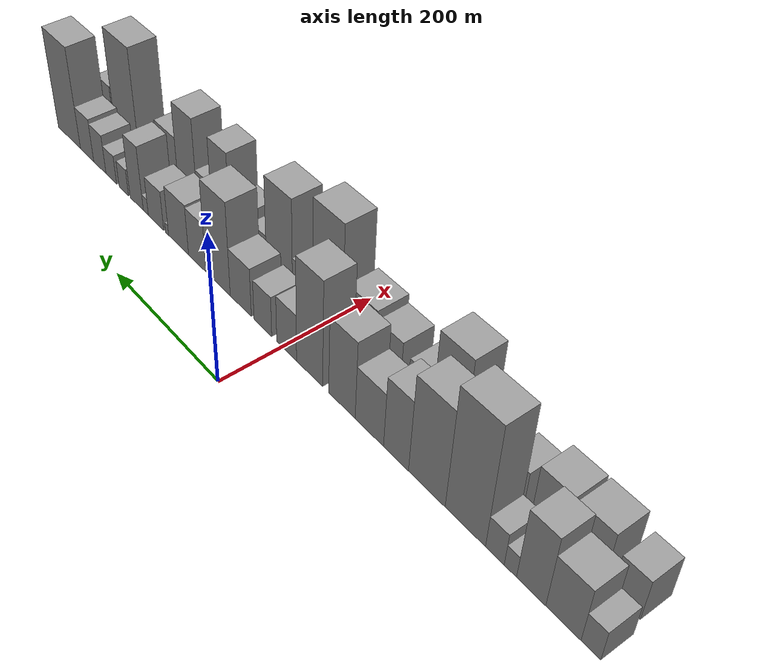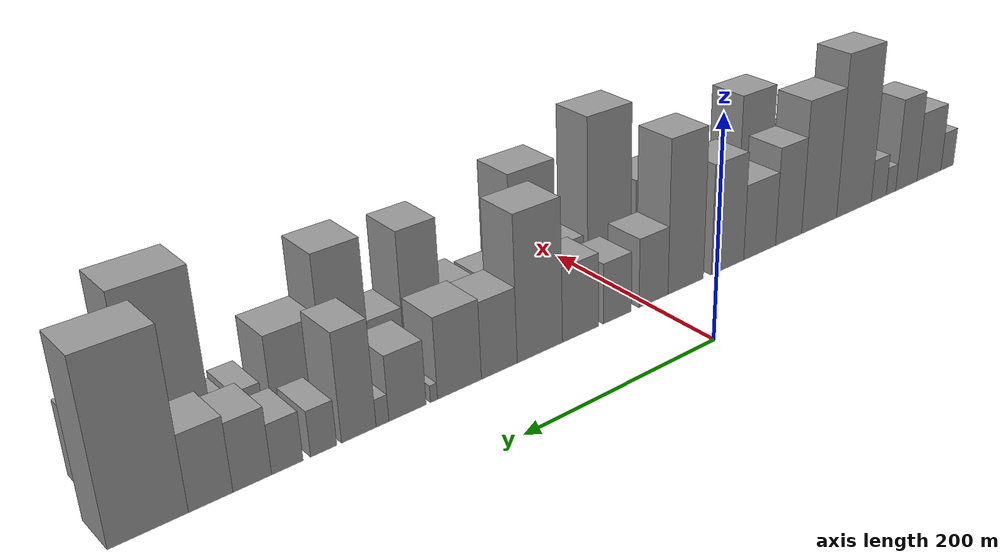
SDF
<sdf version="1.6">
 <world name="default">
  <scene>
   <sky><clouds><speed>12</speed></clouds></sky>
   <ambient>0.4 0.4 0.4 1</ambient>
   <background>0.7 0.7 0.7 1</background>
   <shadows>1</shadows>
  </scene>
  <gravity>0 0 -9.8066</gravity>
  <magnetic_field>6e-06 2.3e-05 -4.2e-05</magnetic_field>
  <physics default="0" name="default_physics" type="ode">
   <ode>
    <solver>
     <type>quick</type>
     <iters>10</iters>
     <sor>1.0</sor>
     <use_dynamic_moi_rescaling>0</use_dynamic_moi_rescaling>
    </solver>
    <constraints>
     <cfm>0</cfm>
     <erp>0.2</erp>
     <contact_max_correcting_vel>100</contact_max_correcting_vel>
     <contact_surface_layer>0.001</contact_surface_layer>
    </constraints>
   </ode>
   <max_step_size>0.004</max_step_size>
   <real_time_factor>1</real_time_factor>
   <real_time_update_rate>250</real_time_update_rate>
  </physics>
  <light name="sun" type="directional">
   <pose>0 0 10 0 0 0</pose>
   <diffuse>0.8 0.8 0.8 1</diffuse>
   <specular>0.2 0.2 0.2 1</specular>
   <attenuation>
    <range>1000</range>
    <constant>0.9</constant>
    <linear>0.01</linear>
    <quadratic>0.001</quadratic>
   </attenuation>
   <direction>-0.5 0.1 -0.9</direction>
  </light>
  <model name="building_1">
   <static>1</static>
   <pose>100.0000 -438.6975 0 0.000000 0.000000 0.000000</pose>
   <link name="link">
    <pose>0 0 21.00 0 0 0</pose>
    <collision name="collision"><geometry><box><size>40.0000 22.6050 42.0000</size></box></geometry></collision>
    <visual name="visual">
     <cast_shadows>0</cast_shadows>
     <geometry><box><size>40.0000 22.6050 42.0000</size></box></geometry>
     <material>
      <script>
       <uri>model://grey_wall/materials/scripts</uri>
       <uri>model://grey_wall/materials/textures</uri>
       <name>vrc/grey_wall</name>
      </script>
     </material>
    </visual>
   </link>
  </model>
  <model name="building_2">
   <static>1</static>
   <pose>100.0000 -406.5002 0 0.000000 0.000000 0.000000</pose>
   <link name="link">
    <pose>0 0 37.50 0 0 0</pose>
    <collision name="collision"><geometry><box><size>40.0000 41.7895 75.0000</size></box></geometry></collision>
    <visual name="visual">
     <cast_shadows>0</cast_shadows>
     <geometry><box><size>40.0000 41.7895 75.0000</size></box></geometry>
     <material>
      <script>
       <uri>model://grey_wall/materials/scripts</uri>
       <uri>model://grey_wall/materials/textures</uri>
       <name>vrc/grey_wall</name>
      </script>
     </material>
    </visual>
   </link>
  </model>
  <model name="building_3">
   <static>1</static>
   <pose>100.0000 -367.5812 0 0.000000 0.000000 0.000000</pose>
   <link name="link">
    <pose>0 0 49.50 0 0 0</pose>
    <collision name="collision"><geometry><box><size>40.0000 36.0486 99.0000</size></box></geometry></collision>
    <visual name="visual">
     <cast_shadows>0</cast_shadows>
     <geometry><box><size>40.0000 36.0486 99.0000</size></box></geometry>
     <material>
      <script>
       <uri>model://grey_wall/materials/scripts</uri>
       <uri>model://grey_wall/materials/textures</uri>
       <name>vrc/grey_wall</name>
      </script>
     </material>
    </visual>
   </link>
  </model>
  <model name="building_4">
   <static>1</static>
   <pose>100.0000 -341.7161 0 0.000000 0.000000 0.000000</pose>
   <link name="link">
    <pose>0 0 15.00 0 0 0</pose>
    <collision name="collision"><geometry><box><size>40.0000 15.6816 30.0000</size></box></geometry></collision>
    <visual name="visual">
     <cast_shadows>0</cast_shadows>
     <geometry><box><size>40.0000 15.6816 30.0000</size></box></geometry>
     <material>
      <script>
       <uri>model://grey_wall/materials/scripts</uri>
       <uri>model://grey_wall/materials/textures</uri>
       <name>vrc/grey_wall</name>
      </script>
     </material>
    </visual>
   </link>
  </model>
  <model name="building_5">
   <static>1</static>
   <pose>100.0000 -321.7724 0 0.000000 0.000000 0.000000</pose>
   <link name="link">
    <pose>0 0 22.50 0 0 0</pose>
    <collision name="collision"><geometry><box><size>40.0000 24.2058 45.0000</size></box></geometry></collision>
    <visual name="visual">
     <cast_shadows>0</cast_shadows>
     <geometry><box><size>40.0000 24.2058 45.0000</size></box></geometry>
     <material>
      <script>
       <uri>model://grey_wall/materials/scripts</uri>
       <uri>model://grey_wall/materials/textures</uri>
       <name>vrc/grey_wall</name>
      </script>
     </material>
    </visual>
   </link>
  </model>
  <model name="building_6">
   <static>1</static>
   <pose>100.0000 -282.4637 0 0.000000 0.000000 0.000000</pose>
   <link name="link">
    <pose>0 0 84.00 0 0 0</pose>
    <collision name="collision"><geometry><box><size>40.0000 54.4115 168.0000</size></box></geometry></collision>
    <visual name="visual">
     <cast_shadows>0</cast_shadows>
     <geometry><box><size>40.0000 54.4115 168.0000</size></box></geometry>
     <material>
      <script>
       <uri>model://grey_wall/materials/scripts</uri>
       <uri>model://grey_wall/materials/textures</uri>
       <name>vrc/grey_wall</name>
      </script>
     </material>
    </visual>
   </link>
  </model>
  <model name="building_7">
   <static>1</static>
   <pose>100.0000 -229.1342 0 0.000000 0.000000 0.000000</pose>
   <link name="link">
    <pose>0 0 67.50 0 0 0</pose>
    <collision name="collision"><geometry><box><size>40.0000 52.2474 135.0000</size></box></geometry></collision>
    <visual name="visual">
     <cast_shadows>0</cast_shadows>
     <geometry><box><size>40.0000 52.2474 135.0000</size></box></geometry>
     <material>
      <script>
       <uri>model://grey_wall/materials/scripts</uri>
       <uri>model://grey_wall/materials/textures</uri>
       <name>vrc/grey_wall</name>
      </script>
     </material>
    </visual>
   </link>
  </model>
  <model name="building_8">
   <static>1</static>
   <pose>100.0000 -184.4426 0 0.000000 0.000000 0.000000</pose>
   <link name="link">
    <pose>0 0 49.50 0 0 0</pose>
    <collision name="collision"><geometry><box><size>40.0000 37.1358 99.0000</size></box></geometry></collision>
    <visual name="visual">
     <cast_shadows>0</cast_shadows>
     <geometry><box><size>40.0000 37.1358 99.0000</size></box></geometry>
     <material>
      <script>
       <uri>model://grey_wall/materials/scripts</uri>
       <uri>model://grey_wall/materials/textures</uri>
       <name>vrc/grey_wall</name>
      </script>
     </material>
    </visual>
   </link>
  </model>
  <model name="building_9">
   <static>1</static>
   <pose>100.0000 -143.9571 0 0.000000 0.000000 0.000000</pose>
   <link name="link">
    <pose>0 0 37.50 0 0 0</pose>
    <collision name="collision"><geometry><box><size>40.0000 43.8353 75.0000</size></box></geometry></collision>
    <visual name="visual">
     <cast_shadows>0</cast_shadows>
     <geometry><box><size>40.0000 43.8353 75.0000</size></box></geometry>
     <material>
      <script>
       <uri>model://grey_wall/materials/scripts</uri>
       <uri>model://grey_wall/materials/textures</uri>
       <name>vrc/grey_wall</name>
      </script>
     </material>
    </visual>
   </link>
  </model>
  <model name="building_10">
   <static>1</static>
   <pose>100.0000 -100.6402 0 0.000000 0.000000 0.000000</pose>
   <link name="link">
    <pose>0 0 54.00 0 0 0</pose>
    <collision name="collision"><geometry><box><size>40.0000 42.7984 108.0000</size></box></geometry></collision>
    <visual name="visual">
     <cast_shadows>0</cast_shadows>
     <geometry><box><size>40.0000 42.7984 108.0000</size></box></geometry>
     <material>
      <script>
       <uri>model://grey_wall/materials/scripts</uri>
       <uri>model://grey_wall/materials/textures</uri>
       <name>vrc/grey_wall</name>
      </script>
     </material>
    </visual>
   </link>
  </model>
  <model name="building_11">
   <static>1</static>
   <pose>100.0000 -47.1690 0 0.000000 0.000000 0.000000</pose>
   <link name="link">
    <pose>0 0 73.50 0 0 0</pose>
    <collision name="collision"><geometry><box><size>40.0000 44.1441 147.0000</size></box></geometry></collision>
    <visual name="visual">
     <cast_shadows>0</cast_shadows>
     <geometry><box><size>40.0000 44.1441 147.0000</size></box></geometry>
     <material>
      <script>
       <uri>model://grey_wall/materials/scripts</uri>
       <uri>model://grey_wall/materials/textures</uri>
       <name>vrc/grey_wall</name>
      </script>
     </material>
    </visual>
   </link>
  </model>
  <model name="building_12">
   <static>1</static>
   <pose>100.0000 -7.7642 0 0.000000 0.000000 0.000000</pose>
   <link name="link">
    <pose>0 0 33.00 0 0 0</pose>
    <collision name="collision"><geometry><box><size>40.0000 34.6655 66.0000</size></box></geometry></collision>
    <visual name="visual">
     <cast_shadows>0</cast_shadows>
     <geometry><box><size>40.0000 34.6655 66.0000</size></box></geometry>
     <material>
      <script>
       <uri>model://grey_wall/materials/scripts</uri>
       <uri>model://grey_wall/materials/textures</uri>
       <name>vrc/grey_wall</name>
      </script>
     </material>
    </visual>
   </link>
  </model>
  <model name="building_13">
   <static>1</static>
   <pose>100.0000 34.6609 0 0.000000 0.000000 0.000000</pose>
   <link name="link">
    <pose>0 0 28.50 0 0 0</pose>
    <collision name="collision"><geometry><box><size>40.0000 32.1845 57.0000</size></box></geometry></collision>
    <visual name="visual">
     <cast_shadows>0</cast_shadows>
     <geometry><box><size>40.0000 32.1845 57.0000</size></box></geometry>
     <material>
      <script>
       <uri>model://grey_wall/materials/scripts</uri>
       <uri>model://grey_wall/materials/textures</uri>
       <name>vrc/grey_wall</name>
      </script>
     </material>
    </visual>
   </link>
  </model>
  <model name="building_14">
   <static>1</static>
   <pose>100.0000 75.6124 0 0.000000 0.000000 0.000000</pose>
   <link name="link">
    <pose>0 0 34.50 0 0 0</pose>
    <collision name="collision"><geometry><box><size>40.0000 39.7187 69.0000</size></box></geometry></collision>
    <visual name="visual">
     <cast_shadows>0</cast_shadows>
     <geometry><box><size>40.0000 39.7187 69.0000</size></box></geometry>
     <material>
      <script>
       <uri>model://grey_wall/materials/scripts</uri>
       <uri>model://grey_wall/materials/textures</uri>
       <name>vrc/grey_wall</name>
      </script>
     </material>
    </visual>
   </link>
  </model>
  <model name="building_15">
   <static>1</static>
   <pose>100.0000 119.1452 0 0.000000 0.000000 0.000000</pose>
   <link name="link">
    <pose>0 0 66.00 0 0 0</pose>
    <collision name="collision"><geometry><box><size>40.0000 47.3469 132.0000</size></box></geometry></collision>
    <visual name="visual">
     <cast_shadows>0</cast_shadows>
     <geometry><box><size>40.0000 47.3469 132.0000</size></box></geometry>
     <material>
      <script>
       <uri>model://grey_wall/materials/scripts</uri>
       <uri>model://grey_wall/materials/textures</uri>
       <name>vrc/grey_wall</name>
      </script>
     </material>
    </visual>
   </link>
  </model>
  <model name="building_16">
   <static>1</static>
   <pose>100.0000 160.6258 0 0.000000 0.000000 0.000000</pose>
   <link name="link">
    <pose>0 0 34.50 0 0 0</pose>
    <collision name="collision"><geometry><box><size>40.0000 35.6143 69.0000</size></box></geometry></collision>
    <visual name="visual">
     <cast_shadows>0</cast_shadows>
     <geometry><box><size>40.0000 35.6143 69.0000</size></box></geometry>
     <material>
      <script>
       <uri>model://grey_wall/materials/scripts</uri>
       <uri>model://grey_wall/materials/textures</uri>
       <name>vrc/grey_wall</name>
      </script>
     </material>
    </visual>
   </link>
  </model>
  <model name="building_17">
   <static>1</static>
   <pose>100.0000 199.3810 0 0.000000 0.000000 0.000000</pose>
   <link name="link">
    <pose>0 0 36.00 0 0 0</pose>
    <collision name="collision"><geometry><box><size>40.0000 41.8960 72.0000</size></box></geometry></collision>
    <visual name="visual">
     <cast_shadows>0</cast_shadows>
     <geometry><box><size>40.0000 41.8960 72.0000</size></box></geometry>
     <material>
      <script>
       <uri>model://grey_wall/materials/scripts</uri>
       <uri>model://grey_wall/materials/textures</uri>
       <name>vrc/grey_wall</name>
      </script>
     </material>
    </visual>
   </link>
  </model>
  <model name="building_18">
   <static>1</static>
   <pose>100.0000 223.5403 0 0.000000 0.000000 0.000000</pose>
   <link name="link">
    <pose>0 0 7.50 0 0 0</pose>
    <collision name="collision"><geometry><box><size>40.0000 6.4225 15.0000</size></box></geometry></collision>
    <visual name="visual">
     <cast_shadows>0</cast_shadows>
     <geometry><box><size>40.0000 6.4225 15.0000</size></box></geometry>
     <material>
      <script>
       <uri>model://grey_wall/materials/scripts</uri>
       <uri>model://grey_wall/materials/textures</uri>
       <name>vrc/grey_wall</name>
      </script>
     </material>
    </visual>
   </link>
  </model>
  <model name="building_19">
   <static>1</static>
   <pose>100.0000 247.5227 0 0.000000 0.000000 0.000000</pose>
   <link name="link">
    <pose>0 0 28.50 0 0 0</pose>
    <collision name="collision"><geometry><box><size>40.0000 33.5424 57.0000</size></box></geometry></collision>
    <visual name="visual">
     <cast_shadows>0</cast_shadows>
     <geometry><box><size>40.0000 33.5424 57.0000</size></box></geometry>
     <material>
      <script>
       <uri>model://grey_wall/materials/scripts</uri>
       <uri>model://grey_wall/materials/textures</uri>
       <name>vrc/grey_wall</name>
      </script>
     </material>
    </visual>
   </link>
  </model>
  <model name="building_20">
   <static>1</static>
   <pose>100.0000 269.8458 0 0.000000 0.000000 0.000000</pose>
   <link name="link">
    <pose>0 0 12.00 0 0 0</pose>
    <collision name="collision"><geometry><box><size>40.0000 11.1038 24.0000</size></box></geometry></collision>
    <visual name="visual">
     <cast_shadows>0</cast_shadows>
     <geometry><box><size>40.0000 11.1038 24.0000</size></box></geometry>
     <material>
      <script>
       <uri>model://grey_wall/materials/scripts</uri>
       <uri>model://grey_wall/materials/textures</uri>
       <name>vrc/grey_wall</name>
      </script>
     </material>
    </visual>
   </link>
  </model>
  <model name="building_21">
   <static>1</static>
   <pose>100.0000 290.1641 0 0.000000 0.000000 0.000000</pose>
   <link name="link">
    <pose>0 0 46.50 0 0 0</pose>
    <collision name="collision"><geometry><box><size>40.0000 29.5327 93.0000</size></box></geometry></collision>
    <visual name="visual">
     <cast_shadows>0</cast_shadows>
     <geometry><box><size>40.0000 29.5327 93.0000</size></box></geometry>
     <material>
      <script>
       <uri>model://grey_wall/materials/scripts</uri>
       <uri>model://grey_wall/materials/textures</uri>
       <name>vrc/grey_wall</name>
      </script>
     </material>
    </visual>
   </link>
  </model>
  <model name="building_22">
   <static>1</static>
   <pose>100.0000 319.6768 0 0.000000 0.000000 0.000000</pose>
   <link name="link">
    <pose>0 0 19.50 0 0 0</pose>
    <collision name="collision"><geometry><box><size>40.0000 21.4927 39.0000</size></box></geometry></collision>
    <visual name="visual">
     <cast_shadows>0</cast_shadows>
     <geometry><box><size>40.0000 21.4927 39.0000</size></box></geometry>
     <material>
      <script>
       <uri>model://grey_wall/materials/scripts</uri>
       <uri>model://grey_wall/materials/textures</uri>
       <name>vrc/grey_wall</name>
      </script>
     </material>
    </visual>
   </link>
  </model>
  <model name="building_23">
   <static>1</static>
   <pose>100.0000 348.9001 0 0.000000 0.000000 0.000000</pose>
   <link name="link">
    <pose>0 0 21.00 0 0 0</pose>
    <collision name="collision"><geometry><box><size>40.0000 24.9539 42.0000</size></box></geometry></collision>
    <visual name="visual">
     <cast_shadows>0</cast_shadows>
     <geometry><box><size>40.0000 24.9539 42.0000</size></box></geometry>
     <material>
      <script>
       <uri>model://grey_wall/materials/scripts</uri>
       <uri>model://grey_wall/materials/textures</uri>
       <name>vrc/grey_wall</name>
      </script>
     </material>
    </visual>
   </link>
  </model>
  <model name="building_24">
   <static>1</static>
   <pose>100.0000 376.1782 0 0.000000 0.000000 0.000000</pose>
   <link name="link">
    <pose>0 0 28.50 0 0 0</pose>
    <collision name="collision"><geometry><box><size>40.0000 29.6024 57.0000</size></box></geometry></collision>
    <visual name="visual">
     <cast_shadows>0</cast_shadows>
     <geometry><box><size>40.0000 29.6024 57.0000</size></box></geometry>
     <material>
      <script>
       <uri>model://grey_wall/materials/scripts</uri>
       <uri>model://grey_wall/materials/textures</uri>
       <name>vrc/grey_wall</name>
      </script>
     </material>
    </visual>
   </link>
  </model>
  <model name="building_25">
   <static>1</static>
   <pose>100.0000 407.3215 0 0.000000 0.000000 0.000000</pose>
   <link name="link">
    <pose>0 0 31.50 0 0 0</pose>
    <collision name="collision"><geometry><box><size>40.0000 32.6842 63.0000</size></box></geometry></collision>
    <visual name="visual">
     <cast_shadows>0</cast_shadows>
     <geometry><box><size>40.0000 32.6842 63.0000</size></box></geometry>
     <material>
      <script>
       <uri>model://grey_wall/materials/scripts</uri>
       <uri>model://grey_wall/materials/textures</uri>
       <name>vrc/grey_wall</name>
      </script>
     </material>
    </visual>
   </link>
  </model>
  <model name="building_26">
   <static>1</static>
   <pose>100.0000 451.8058 0 0.000000 0.000000 0.000000</pose>
   <link name="link">
    <pose>0 0 73.50 0 0 0</pose>
    <collision name="collision"><geometry><box><size>40.0000 56.2844 147.0000</size></box></geometry></collision>
    <visual name="visual">
     <cast_shadows>0</cast_shadows>
     <geometry><box><size>40.0000 56.2844 147.0000</size></box></geometry>
     <material>
      <script>
       <uri>model://grey_wall/materials/scripts</uri>
       <uri>model://grey_wall/materials/textures</uri>
       <name>vrc/grey_wall</name>
      </script>
     </material>
    </visual>
   </link>
  </model>
  <model name="building_27">
   <static>1</static>
   <pose>155.0000 -427.6339 0 0.000000 0.000000 0.000000</pose>
   <link name="link">
    <pose>0 0 28.50 0 0 0</pose>
    <collision name="collision"><geometry><box><size>40.0000 32.7322 57.0000</size></box></geometry></collision>
    <visual name="visual">
     <cast_shadows>0</cast_shadows>
     <geometry><box><size>40.0000 32.7322 57.0000</size></box></geometry>
     <material>
      <script>
       <uri>model://grey_wall/materials/scripts</uri>
       <uri>model://grey_wall/materials/textures</uri>
       <name>vrc/grey_wall</name>
      </script>
     </material>
    </visual>
   </link>
  </model>
  <model name="building_28">
   <static>1</static>
   <pose>155.0000 -379.0314 0 0.000000 0.000000 0.000000</pose>
   <link name="link">
    <pose>0 0 37.50 0 0 0</pose>
    <collision name="collision"><geometry><box><size>40.0000 44.4727 75.0000</size></box></geometry></collision>
    <visual name="visual">
     <cast_shadows>0</cast_shadows>
     <geometry><box><size>40.0000 44.4727 75.0000</size></box></geometry>
     <material>
      <script>
       <uri>model://grey_wall/materials/scripts</uri>
       <uri>model://grey_wall/materials/textures</uri>
       <name>vrc/grey_wall</name>
      </script>
     </material>
    </visual>
   </link>
  </model>
  <model name="building_29">
   <static>1</static>
   <pose>155.0000 -332.5333 0 0.000000 0.000000 0.000000</pose>
   <link name="link">
    <pose>0 0 37.50 0 0 0</pose>
    <collision name="collision"><geometry><box><size>40.0000 42.5235 75.0000</size></box></geometry></collision>
    <visual name="visual">
     <cast_shadows>0</cast_shadows>
     <geometry><box><size>40.0000 42.5235 75.0000</size></box></geometry>
     <material>
      <script>
       <uri>model://grey_wall/materials/scripts</uri>
       <uri>model://grey_wall/materials/textures</uri>
       <name>vrc/grey_wall</name>
      </script>
     </material>
    </visual>
   </link>
  </model>
  <model name="building_30">
   <static>1</static>
   <pose>155.0000 -286.5264 0 0.000000 0.000000 0.000000</pose>
   <link name="link">
    <pose>0 0 27.00 0 0 0</pose>
    <collision name="collision"><geometry><box><size>40.0000 29.4903 54.0000</size></box></geometry></collision>
    <visual name="visual">
     <cast_shadows>0</cast_shadows>
     <geometry><box><size>40.0000 29.4903 54.0000</size></box></geometry>
     <material>
      <script>
       <uri>model://grey_wall/materials/scripts</uri>
       <uri>model://grey_wall/materials/textures</uri>
       <name>vrc/grey_wall</name>
      </script>
     </material>
    </visual>
   </link>
  </model>
  <model name="building_31">
   <static>1</static>
   <pose>155.0000 -240.9406 0 0.000000 0.000000 0.000000</pose>
   <link name="link">
    <pose>0 0 37.50 0 0 0</pose>
    <collision name="collision"><geometry><box><size>40.0000 43.6813 75.0000</size></box></geometry></collision>
    <visual name="visual">
     <cast_shadows>0</cast_shadows>
     <geometry><box><size>40.0000 43.6813 75.0000</size></box></geometry>
     <material>
      <script>
       <uri>model://grey_wall/materials/scripts</uri>
       <uri>model://grey_wall/materials/textures</uri>
       <name>vrc/grey_wall</name>
      </script>
     </material>
    </visual>
   </link>
  </model>
  <model name="building_32">
   <static>1</static>
   <pose>155.0000 -195.7941 0 0.000000 0.000000 0.000000</pose>
   <link name="link">
    <pose>0 0 66.00 0 0 0</pose>
    <collision name="collision"><geometry><box><size>40.0000 46.6116 132.0000</size></box></geometry></collision>
    <visual name="visual">
     <cast_shadows>0</cast_shadows>
     <geometry><box><size>40.0000 46.6116 132.0000</size></box></geometry>
     <material>
      <script>
       <uri>model://grey_wall/materials/scripts</uri>
       <uri>model://grey_wall/materials/textures</uri>
       <name>vrc/grey_wall</name>
      </script>
     </material>
    </visual>
   </link>
  </model>
  <model name="building_33">
   <static>1</static>
   <pose>155.0000 -154.2296 0 0.000000 0.000000 0.000000</pose>
   <link name="link">
    <pose>0 0 31.50 0 0 0</pose>
    <collision name="collision"><geometry><box><size>40.0000 36.5173 63.0000</size></box></geometry></collision>
    <visual name="visual">
     <cast_shadows>0</cast_shadows>
     <geometry><box><size>40.0000 36.5173 63.0000</size></box></geometry>
     <material>
      <script>
       <uri>model://grey_wall/materials/scripts</uri>
       <uri>model://grey_wall/materials/textures</uri>
       <name>vrc/grey_wall</name>
      </script>
     </material>
    </visual>
   </link>
  </model>
  <model name="building_34">
   <static>1</static>
   <pose>155.0000 -130.4235 0 0.000000 0.000000 0.000000</pose>
   <link name="link">
    <pose>0 0 12.00 0 0 0</pose>
    <collision name="collision"><geometry><box><size>40.0000 11.0950 24.0000</size></box></geometry></collision>
    <visual name="visual">
     <cast_shadows>0</cast_shadows>
     <geometry><box><size>40.0000 11.0950 24.0000</size></box></geometry>
     <material>
      <script>
       <uri>model://grey_wall/materials/scripts</uri>
       <uri>model://grey_wall/materials/textures</uri>
       <name>vrc/grey_wall</name>
      </script>
     </material>
    </visual>
   </link>
  </model>
  <model name="building_35">
   <static>1</static>
   <pose>155.0000 -105.1283 0 0.000000 0.000000 0.000000</pose>
   <link name="link">
    <pose>0 0 37.50 0 0 0</pose>
    <collision name="collision"><geometry><box><size>40.0000 39.4955 75.0000</size></box></geometry></collision>
    <visual name="visual">
     <cast_shadows>0</cast_shadows>
     <geometry><box><size>40.0000 39.4955 75.0000</size></box></geometry>
     <material>
      <script>
       <uri>model://grey_wall/materials/scripts</uri>
       <uri>model://grey_wall/materials/textures</uri>
       <name>vrc/grey_wall</name>
      </script>
     </material>
    </visual>
   </link>
  </model>
  <model name="building_36">
   <static>1</static>
   <pose>155.0000 -61.3893 0 0.000000 0.000000 0.000000</pose>
   <link name="link">
    <pose>0 0 43.50 0 0 0</pose>
    <collision name="collision"><geometry><box><size>40.0000 47.9824 87.0000</size></box></geometry></collision>
    <visual name="visual">
     <cast_shadows>0</cast_shadows>
     <geometry><box><size>40.0000 47.9824 87.0000</size></box></geometry>
     <material>
      <script>
       <uri>model://grey_wall/materials/scripts</uri>
       <uri>model://grey_wall/materials/textures</uri>
       <name>vrc/grey_wall</name>
      </script>
     </material>
    </visual>
   </link>
  </model>
  <model name="building_37">
   <static>1</static>
   <pose>155.0000 -5.8258 0 0.000000 0.000000 0.000000</pose>
   <link name="link">
    <pose>0 0 81.00 0 0 0</pose>
    <collision name="collision"><geometry><box><size>40.0000 51.1446 162.0000</size></box></geometry></collision>
    <visual name="visual">
     <cast_shadows>0</cast_shadows>
     <geometry><box><size>40.0000 51.1446 162.0000</size></box></geometry>
     <material>
      <script>
       <uri>model://grey_wall/materials/scripts</uri>
       <uri>model://grey_wall/materials/textures</uri>
       <name>vrc/grey_wall</name>
      </script>
     </material>
    </visual>
   </link>
  </model>
  <model name="building_38">
   <static>1</static>
   <pose>155.0000 40.3912 0 0.000000 0.000000 0.000000</pose>
   <link name="link">
    <pose>0 0 27.00 0 0 0</pose>
    <collision name="collision"><geometry><box><size>40.0000 31.2895 54.0000</size></box></geometry></collision>
    <visual name="visual">
     <cast_shadows>0</cast_shadows>
     <geometry><box><size>40.0000 31.2895 54.0000</size></box></geometry>
     <material>
      <script>
       <uri>model://grey_wall/materials/scripts</uri>
       <uri>model://grey_wall/materials/textures</uri>
       <name>vrc/grey_wall</name>
      </script>
     </material>
    </visual>
   </link>
  </model>
  <model name="building_39">
   <static>1</static>
   <pose>155.0000 80.2351 0 0.000000 0.000000 0.000000</pose>
   <link name="link">
    <pose>0 0 67.50 0 0 0</pose>
    <collision name="collision"><geometry><box><size>40.0000 48.3982 135.0000</size></box></geometry></collision>
    <visual name="visual">
     <cast_shadows>0</cast_shadows>
     <geometry><box><size>40.0000 48.3982 135.0000</size></box></geometry>
     <material>
      <script>
       <uri>model://grey_wall/materials/scripts</uri>
       <uri>model://grey_wall/materials/textures</uri>
       <name>vrc/grey_wall</name>
      </script>
     </material>
    </visual>
   </link>
  </model>
  <model name="building_40">
   <static>1</static>
   <pose>155.0000 118.5507 0 0.000000 0.000000 0.000000</pose>
   <link name="link">
    <pose>0 0 25.50 0 0 0</pose>
    <collision name="collision"><geometry><box><size>40.0000 28.2330 51.0000</size></box></geometry></collision>
    <visual name="visual">
     <cast_shadows>0</cast_shadows>
     <geometry><box><size>40.0000 28.2330 51.0000</size></box></geometry>
     <material>
      <script>
       <uri>model://grey_wall/materials/scripts</uri>
       <uri>model://grey_wall/materials/textures</uri>
       <name>vrc/grey_wall</name>
      </script>
     </material>
    </visual>
   </link>
  </model>
  <model name="building_41">
   <static>1</static>
   <pose>155.0000 158.5747 0 0.000000 0.000000 0.000000</pose>
   <link name="link">
    <pose>0 0 28.50 0 0 0</pose>
    <collision name="collision"><geometry><box><size>40.0000 33.8149 57.0000</size></box></geometry></collision>
    <visual name="visual">
     <cast_shadows>0</cast_shadows>
     <geometry><box><size>40.0000 33.8149 57.0000</size></box></geometry>
     <material>
      <script>
       <uri>model://grey_wall/materials/scripts</uri>
       <uri>model://grey_wall/materials/textures</uri>
       <name>vrc/grey_wall</name>
      </script>
     </material>
    </visual>
   </link>
  </model>
  <model name="building_42">
   <static>1</static>
   <pose>155.0000 193.8542 0 0.000000 0.000000 0.000000</pose>
   <link name="link">
    <pose>0 0 60.00 0 0 0</pose>
    <collision name="collision"><geometry><box><size>40.0000 36.7441 120.0000</size></box></geometry></collision>
    <visual name="visual">
     <cast_shadows>0</cast_shadows>
     <geometry><box><size>40.0000 36.7441 120.0000</size></box></geometry>
     <material>
      <script>
       <uri>model://grey_wall/materials/scripts</uri>
       <uri>model://grey_wall/materials/textures</uri>
       <name>vrc/grey_wall</name>
      </script>
     </material>
    </visual>
   </link>
  </model>
  <model name="building_43">
   <static>1</static>
   <pose>155.0000 227.9338 0 0.000000 0.000000 0.000000</pose>
   <link name="link">
    <pose>0 0 27.00 0 0 0</pose>
    <collision name="collision"><geometry><box><size>40.0000 31.4151 54.0000</size></box></geometry></collision>
    <visual name="visual">
     <cast_shadows>0</cast_shadows>
     <geometry><box><size>40.0000 31.4151 54.0000</size></box></geometry>
     <material>
      <script>
       <uri>model://grey_wall/materials/scripts</uri>
       <uri>model://grey_wall/materials/textures</uri>
       <name>vrc/grey_wall</name>
      </script>
     </material>
    </visual>
   </link>
  </model>
  <model name="building_44">
   <static>1</static>
   <pose>155.0000 264.1843 0 0.000000 0.000000 0.000000</pose>
   <link name="link">
    <pose>0 0 63.00 0 0 0</pose>
    <collision name="collision"><geometry><box><size>40.0000 41.0857 126.0000</size></box></geometry></collision>
    <visual name="visual">
     <cast_shadows>0</cast_shadows>
     <geometry><box><size>40.0000 41.0857 126.0000</size></box></geometry>
     <material>
      <script>
       <uri>model://grey_wall/materials/scripts</uri>
       <uri>model://grey_wall/materials/textures</uri>
       <name>vrc/grey_wall</name>
      </script>
     </material>
    </visual>
   </link>
  </model>
  <model name="building_45">
   <static>1</static>
   <pose>155.0000 306.9804 0 0.000000 0.000000 0.000000</pose>
   <link name="link">
    <pose>0 0 37.50 0 0 0</pose>
    <collision name="collision"><geometry><box><size>40.0000 44.5066 75.0000</size></box></geometry></collision>
    <visual name="visual">
     <cast_shadows>0</cast_shadows>
     <geometry><box><size>40.0000 44.5066 75.0000</size></box></geometry>
     <material>
      <script>
       <uri>model://grey_wall/materials/scripts</uri>
       <uri>model://grey_wall/materials/textures</uri>
       <name>vrc/grey_wall</name>
      </script>
     </material>
    </visual>
   </link>
  </model>
  <model name="building_46">
   <static>1</static>
   <pose>155.0000 346.8409 0 0.000000 0.000000 0.000000</pose>
   <link name="link">
    <pose>0 0 19.50 0 0 0</pose>
    <collision name="collision"><geometry><box><size>40.0000 21.2144 39.0000</size></box></geometry></collision>
    <visual name="visual">
     <cast_shadows>0</cast_shadows>
     <geometry><box><size>40.0000 21.2144 39.0000</size></box></geometry>
     <material>
      <script>
       <uri>model://grey_wall/materials/scripts</uri>
       <uri>model://grey_wall/materials/textures</uri>
       <name>vrc/grey_wall</name>
      </script>
     </material>
    </visual>
   </link>
  </model>
  <model name="building_47">
   <static>1</static>
   <pose>155.0000 366.4361 0 0.000000 0.000000 0.000000</pose>
   <link name="link">
    <pose>0 0 16.50 0 0 0</pose>
    <collision name="collision"><geometry><box><size>40.0000 17.9760 33.0000</size></box></geometry></collision>
    <visual name="visual">
     <cast_shadows>0</cast_shadows>
     <geometry><box><size>40.0000 17.9760 33.0000</size></box></geometry>
     <material>
      <script>
       <uri>model://grey_wall/materials/scripts</uri>
       <uri>model://grey_wall/materials/textures</uri>
       <name>vrc/grey_wall</name>
      </script>
     </material>
    </visual>
   </link>
  </model>
  <model name="building_48">
   <static>1</static>
   <pose>155.0000 403.8598 0 0.000000 0.000000 0.000000</pose>
   <link name="link">
    <pose>0 0 75.00 0 0 0</pose>
    <collision name="collision"><geometry><box><size>40.0000 56.8712 150.0000</size></box></geometry></collision>
    <visual name="visual">
     <cast_shadows>0</cast_shadows>
     <geometry><box><size>40.0000 56.8712 150.0000</size></box></geometry>
     <material>
      <script>
       <uri>model://grey_wall/materials/scripts</uri>
       <uri>model://grey_wall/materials/textures</uri>
       <name>vrc/grey_wall</name>
      </script>
     </material>
    </visual>
   </link>
  </model>
  <model name="building_49">
   <static>1</static>
   <pose>155.0000 451.5473 0 0.000000 0.000000 0.000000</pose>
   <link name="link">
    <pose>0 0 31.50 0 0 0</pose>
    <collision name="collision"><geometry><box><size>40.0000 32.5039 63.0000</size></box></geometry></collision>
    <visual name="visual">
     <cast_shadows>0</cast_shadows>
     <geometry><box><size>40.0000 32.5039 63.0000</size></box></geometry>
     <material>
      <script>
       <uri>model://grey_wall/materials/scripts</uri>
       <uri>model://grey_wall/materials/textures</uri>
       <name>vrc/grey_wall</name>
      </script>
     </material>
    </visual>
   </link>
  </model>
 </world>
</sdf>
